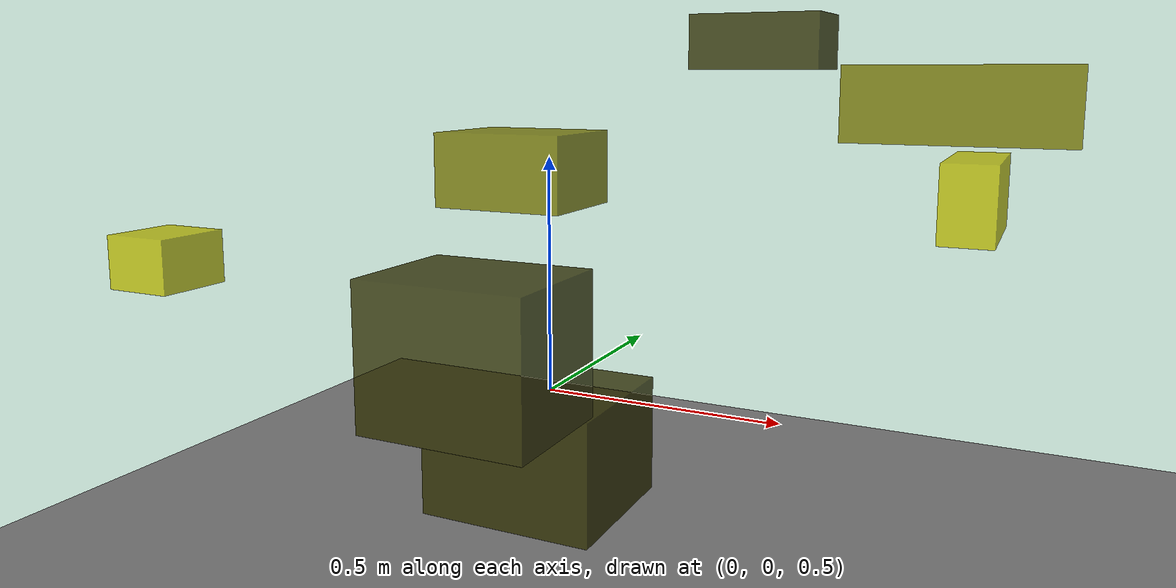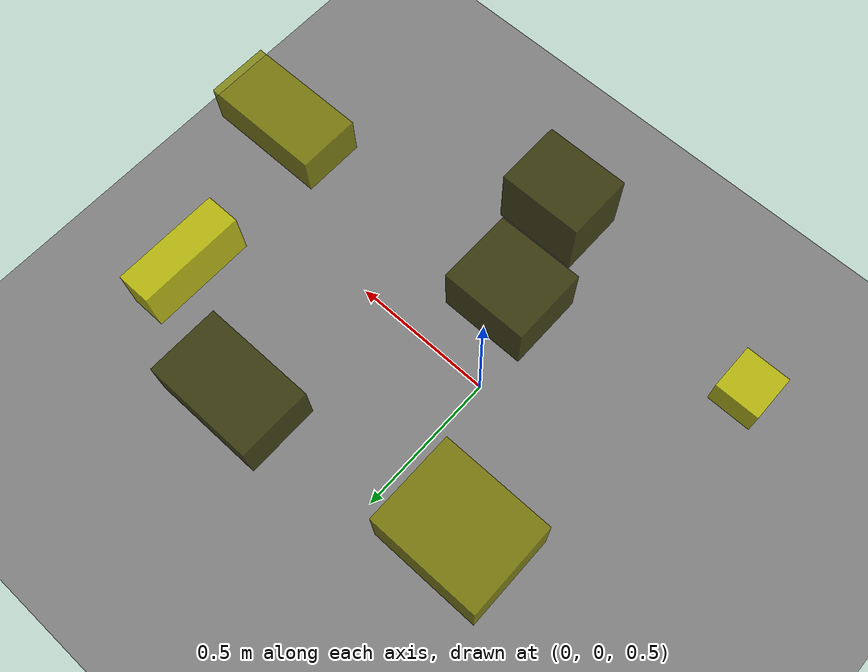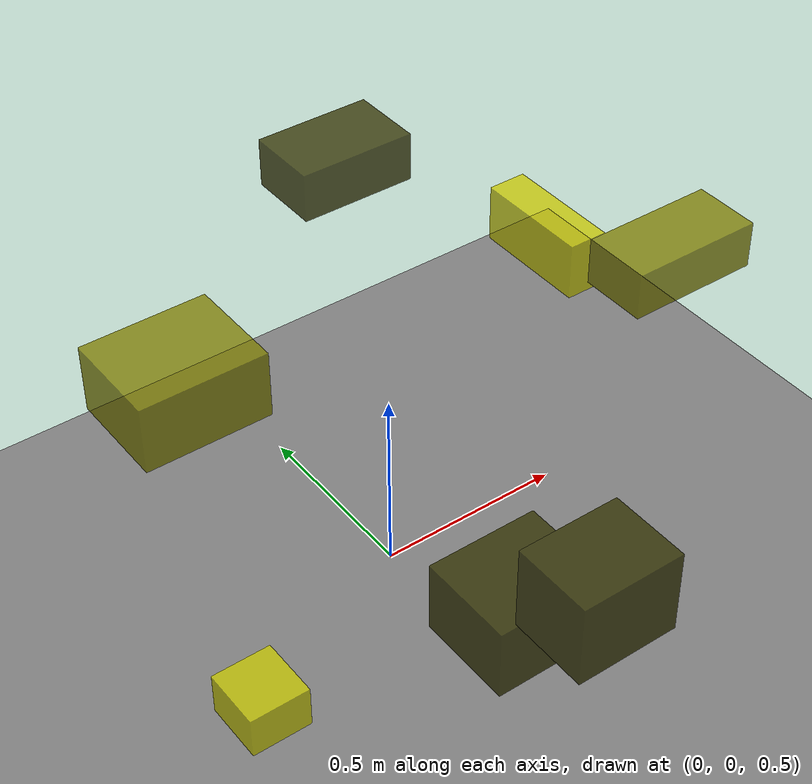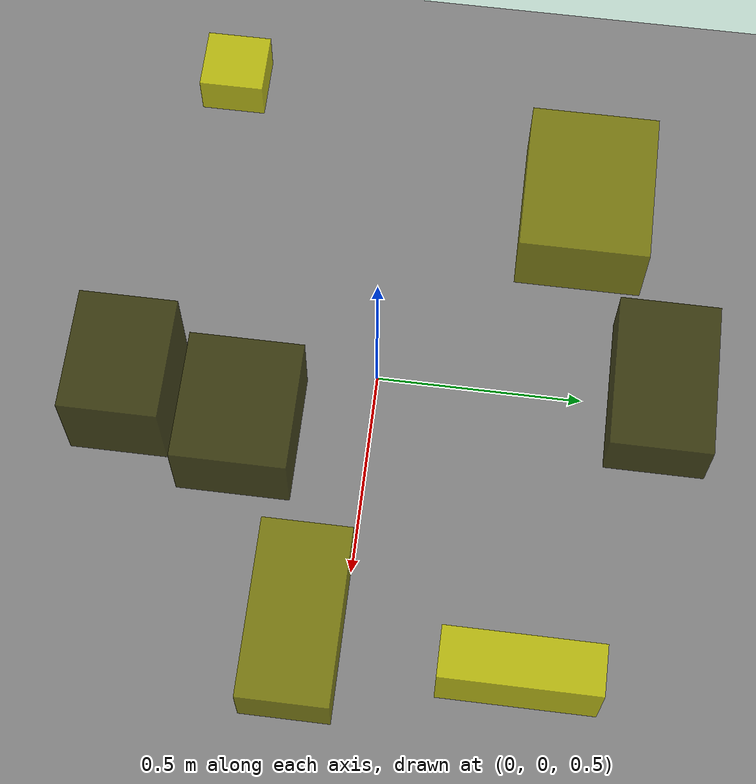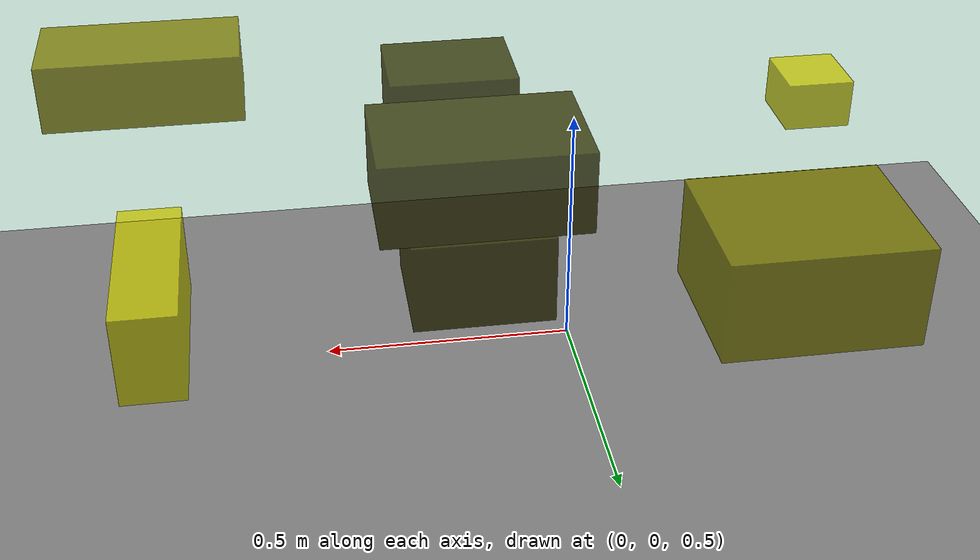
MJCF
<?xml version="1.0"?>
<mujoco model="obstacle_scene">
  <compiler angle="radian" coordinate="local"/>
  <option timestep="0.001" gravity="0 0 -9.81"/>

  <asset>
    <material name="obstacle_mat" rgba="0.8 0.8 0.0 0.8"/>
    <material name="ground_mat" rgba="0.5 0.5 0.5 1"/>
  </asset>

  <worldbody>
    <!-- Ground plane -->
    <geom name="ground" type="plane" size="3 3 0.1" material="ground_mat"/>

    <!-- Obstacles -->
    <body name="obstacle_0" pos="0.277022 0.608897 1.246869">
      <geom name="obs_0" type="box" size="0.158985 0.101314 0.066496" rgba="0.2 0.2 0.0 0.8"/>
    </body>
    <body name="obstacle_1" pos="0.807952 -0.064353 1.122126">
      <geom name="obs_1" type="box" size="0.182536 0.092085 0.064035" rgba="0.5 0.5 0.0 0.8"/>
    </body>
    <body name="obstacle_2" pos="-0.639244 -0.426377 0.804982">
      <geom name="obs_2" type="box" size="0.073335 0.076195 0.054053" rgba="0.8 0.8 0.0 0.8"/>
    </body>
    <body name="obstacle_3" pos="0.146412 -0.317348 0.511592">
      <geom name="obs_3" type="box" size="0.160420 0.140120 0.106670" rgba="0.2 0.2 0.0 0.8"/>
    </body>
    <body name="obstacle_4" pos="-0.314207 0.446286 0.925426">
      <geom name="obs_4" type="box" size="0.177337 0.144892 0.096331" rgba="0.5 0.5 0.0 0.8"/>
    </body>
    <body name="obstacle_5" pos="0.799997 0.393356 0.915236">
      <geom name="obs_5" type="box" size="0.055073 0.170175 0.082339" rgba="0.8 0.8 0.0 0.8"/>
    </body>
    <body name="obstacle_6" pos="0.171382 -0.569195 0.750729">
      <geom name="obs_6" type="box" size="0.144378 0.114019 0.120436" rgba="0.2 0.2 0.0 0.8"/>
    </body>
  </worldbody>
</mujoco>
